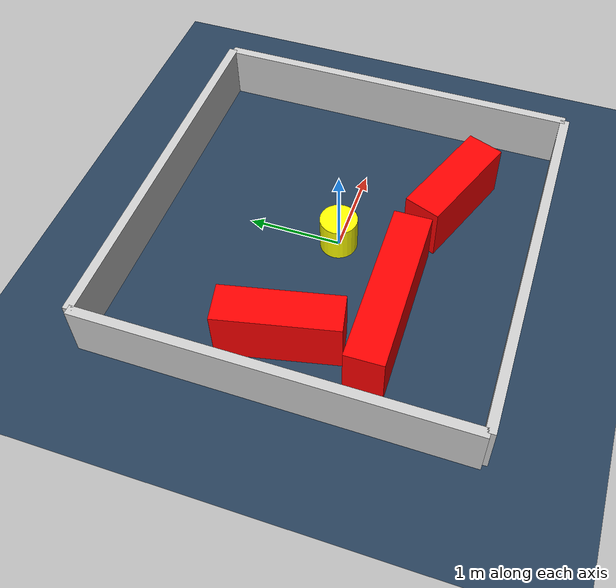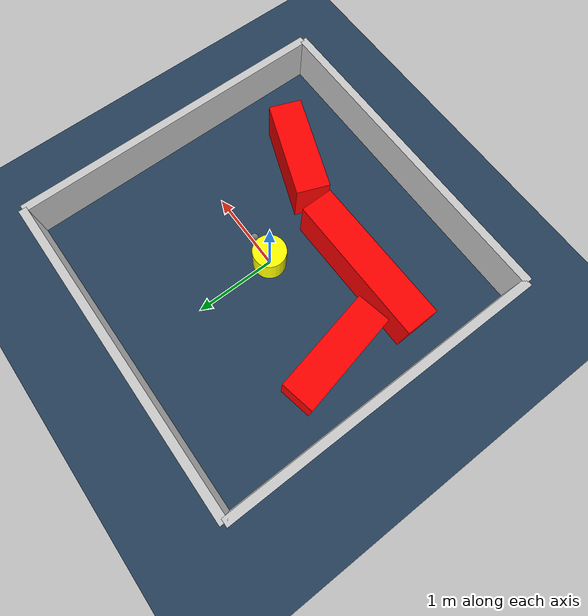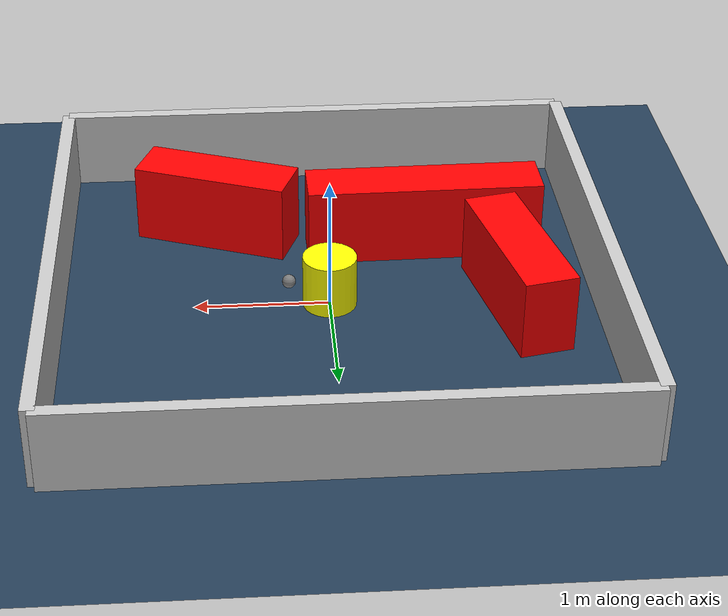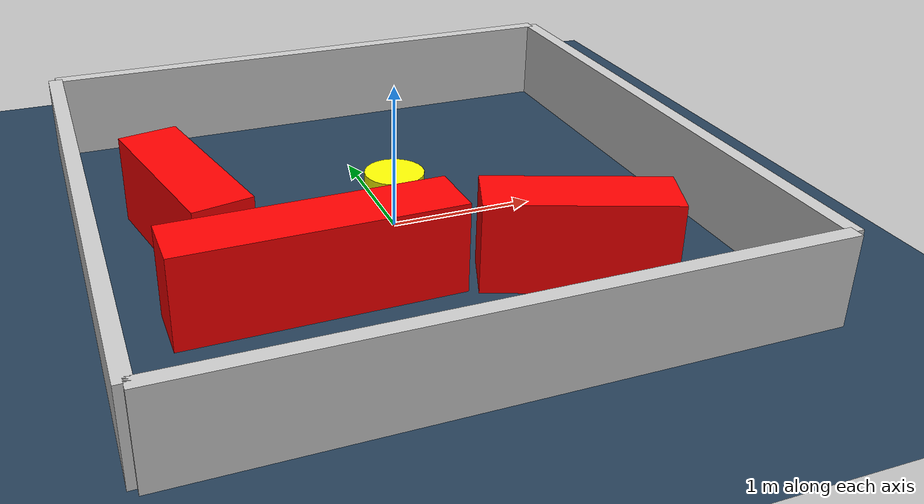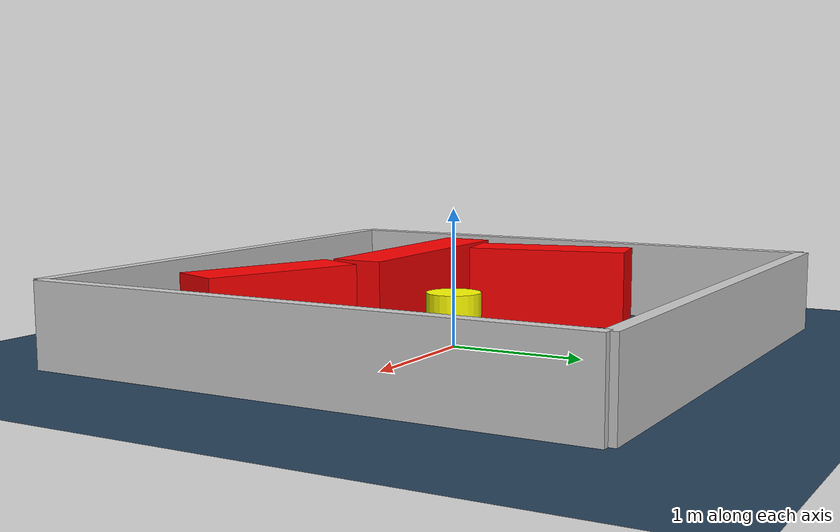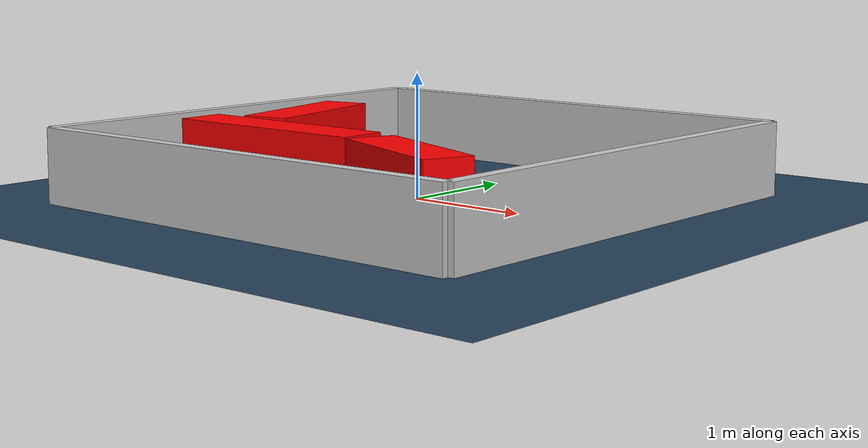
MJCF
<?xml version="1.0" ?>
<mujoco model="generated_environment">
  <option timestep="0.01" integrator="RK4" cone="elliptic"/>
  <default>
    <geom density="1"/>
  </default>
  <asset>
    <texture builtin="gradient" height="3072" rgb1="0.3 0.5 0.7" rgb2="0 0 0" type="skybox" width="512"/>
    <texture builtin="checker" height="300" mark="edge" markrgb="0.8 0.8 0.8" name="groundplane" rgb1="0.2 0.3 0.4" rgb2="0.1 0.2 0.3" type="2d" width="300"/>
    <material name="groundplane" reflectance="0.2" texrepeat="5 5" texture="groundplane" texuniform="true"/>
    <material name="robot" rgba="0.0 1.0 0.0 1"/>
  </asset>
  <worldbody>
    <light dir="0 0 -1" directional="true" pos="0 0 1.5"/>
    <geom condim="4" friction="1.0 0.005 0.001" material="groundplane" name="floor" size="0 0 0.05" type="plane"/>
    <body name="walls">
      <geom name="wall_1" condim="4" pos="-2.0 0.0 0.3" rgba="0.800000011920929 0.800000011920929 0.800000011920929 1.0" size="0.05 2.0 0.3" type="box"/>
      <geom name="wall_2" condim="4" pos="2.0 0.0 0.3" rgba="0.800000011920929 0.800000011920929 0.800000011920929 1.0" size="0.05 2.0 0.3" type="box"/>
      <geom name="wall_3" condim="4" pos="0.0 -2.0 0.3" rgba="0.800000011920929 0.800000011920929 0.800000011920929 1.0" size="2.0 0.05 0.3" type="box"/>
      <geom name="wall_4" condim="4" pos="0.0 2.0 0.3" rgba="0.800000011920929 0.800000011920929 0.800000011920929 1.0" size="2.0 0.05 0.3" type="box"/>
    </body>
    <body name="robot">
      <joint name="joint_x" type="slide" pos="0 0 0" axis="1 0 0"/>
      <joint name="joint_y" type="slide" pos="0 0 0" axis="0 1 0"/>
      <geom name="robot" type="sphere" pos="0.3 0.0 0.2" size="0.05" mass="5." friction="1.0 0.005 0.0001" condim="4" rgba="0.5 0.5 0.5 1.0"/>
      <site name="sensor_ball"/>
    </body>
    <body name="obstacle_movable_1">
      <geom name="obstacle_movable_1" condim="4" pos="0.0 0.0 0.2" euler="0 0 0.0" friction="1.0 0.005 0.001" rgba="1.0 1.0 0.0 1.0" size="0.2 0.2 0.0" type="cylinder" mass="0.1"/>
      <joint type="free"/>
    </body>
    <body name="obstacle_2_static">
      <geom name="obstacle_2_static" condim="4" pos="-0.768352237448245 -0.769156120171308 0.3" euler="0 0 0.8842886728308352" friction="1.0 0.005 0.001" rgba="1 0 0 1" size="0.8951575382469603 0.2 0.3" type="box"/>
    </body>
    <body name="obstacle_3_static">
      <geom name="obstacle_3_static" condim="4" pos="-1.3645590315163347 0.14243048847480533 0.3" euler="0 0 101.97263990088769" friction="1.0 0.005 0.001" rgba="1 0 0 1" size="0.626881089479857 0.2 0.3" type="box"/>
    </body>
    <body name="obstacle_4_static">
      <geom name="obstacle_4_static" condim="4" pos="0.8088300409963842 -1.0229010729311292 0.3" euler="0 0 339.1130796656495" friction="1.0 0.005 0.001" rgba="1 0 0 1" size="0.5978060719886622 0.2 0.3" type="box"/>
    </body>
  </worldbody>
  <actuator>
    <motor name="actuator_x" joint="joint_x" gear="1" ctrlrange="-1 1"/>
    <motor name="actuator_y" joint="joint_y" gear="1" ctrlrange="-1 1"/>
  </actuator>
</mujoco>
